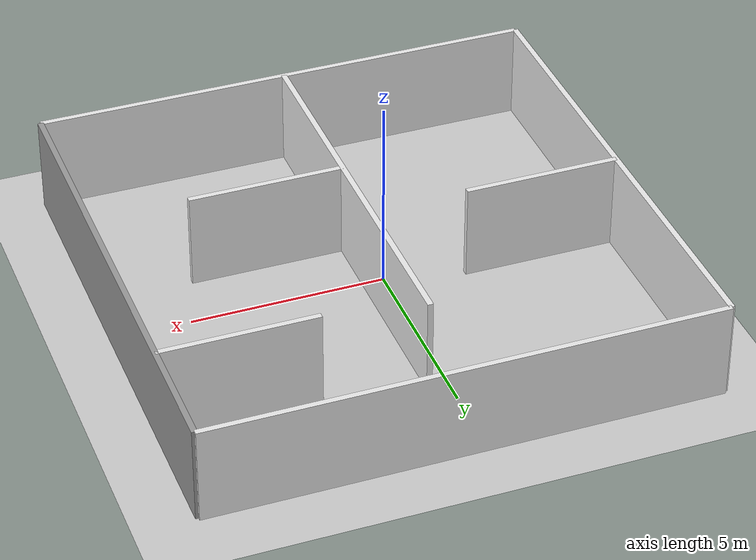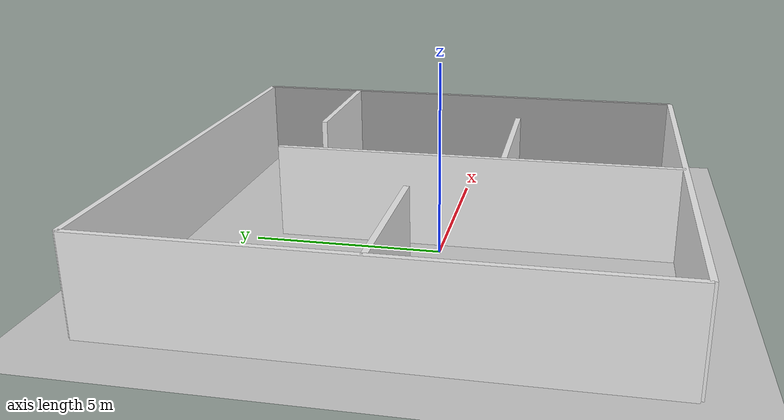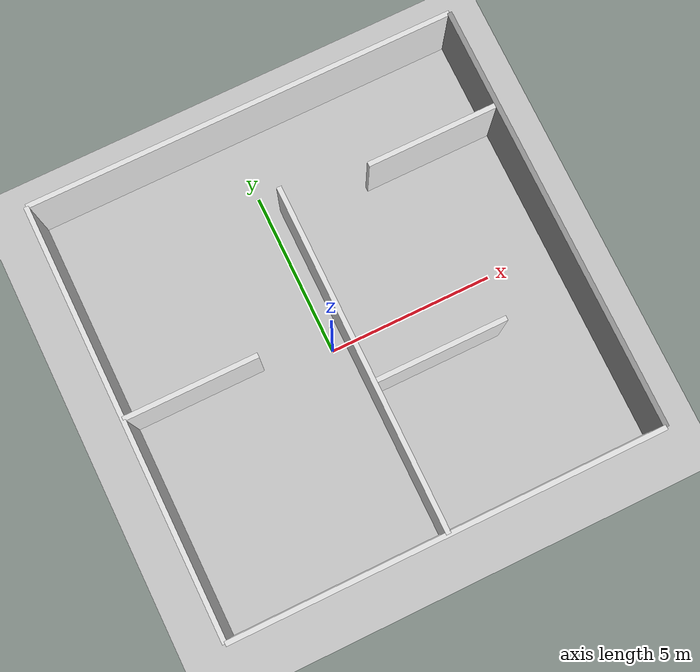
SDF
<?xml version="1.0" ?>

<!-- Instituto Superior Tecnico [2017] -->

<sdf version="1.4">
  <world name="isr-empty-testbed">
    <include>
      <uri>model://ground_plane</uri>
      <material>
          <script>
            <uri>file://media/materials/scripts/gazebo.material</uri>
            <name>Gazebo/Orange</name>
          </script>
      </material>
    </include>

    <!-- Global light source -->
    <include>
        <uri>model://sun</uri>
    </include>

    <!-- walls -->
    <include>
        <uri>file://isr-testbed/walls</uri>
        <pose>0.491830 0.433522 0 0 0 0</pose>
    </include>

    <!-- focus camera to view the whole testbed at startup -->
    <gui fullscreen='0'>
        <camera name='user_camera'>
            <pose frame=''>6.75942 -8.32467 9.76061 0 0.739643 2.1722</pose>
            <view_controller>orbit</view_controller>
            <projection_type>perspective</projection_type>
        </camera>
    </gui>

  </world>
</sdf>

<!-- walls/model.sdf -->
<sdf version='1.6'>
  <model name='walls'>
    <pose frame=''>2.39208 2.30864 0 0 -0 0</pose>
    <link name='Wall_1'>
      <collision name='Wall_1_Collision'>
        <geometry>
          <box>
            <size>13 0.15 2.5</size>
          </box>
        </geometry>
        <pose frame=''>0 0 1.25 0 -0 0</pose>
      </collision>
      <visual name='Wall_1_Visual'>
        <pose frame=''>0 0 1.25 0 -0 0</pose>
        <geometry>
          <box>
            <size>13 0.15 2.5</size>
          </box>
        </geometry>
        <material>
          <script>
            <uri>file://media/materials/scripts/gazebo.material</uri>
            <name>Gazebo/White</name>
          </script>
          <ambient>1 1 1 1</ambient>
        </material>
      </visual>
      <pose frame=''>-6.5 -0 0 0 -0 1.57079632679</pose>
    </link>
    <link name='Wall_2'>
      <collision name='Wall_2_Collision'>
        <geometry>
          <box>
            <size>13 0.15 2.5</size>
          </box>
        </geometry>
        <pose frame=''>0 0 1.25 0 -0 0</pose>
      </collision>
      <visual name='Wall_2_Visual'>
        <pose frame=''>0 0 1.25 0 -0 0</pose>
        <geometry>
          <box>
            <size>13 0.15 2.5</size>
          </box>
        </geometry>
        <material>
          <script>
            <uri>file://media/materials/scripts/gazebo.material</uri>
            <name>Gazebo/White</name>
          </script>
          <ambient>1 1 1 1</ambient>
        </material>
      </visual>
      <pose frame=''>0 6.5 0 0 -0 0</pose>
    </link>
    <link name='Wall_3'>
      <collision name='Wall_3_Collision'>
        <geometry>
          <box>
            <size>13 0.15 2.5</size>
          </box>
        </geometry>
        <pose frame=''>0 0 1.25 0 -0 0</pose>
      </collision>
      <visual name='Wall_3_Visual'>
        <pose frame=''>0 0 1.25 0 -0 0</pose>
        <geometry>
          <box>
            <size>13 0.15 2.5</size>
          </box>
        </geometry>
        <material>
          <script>
            <uri>file://media/materials/scripts/gazebo.material</uri>
            <name>Gazebo/Grey</name>
          </script>
          <ambient>1 1 1 1</ambient>
        </material>
      </visual>
      <pose frame=''>6.5 0 0 0 0 -1.57079632679</pose>
    </link>
    <link name='Wall_4'>
      <collision name='Wall_4_Collision'>
        <geometry>
          <box>
            <size>13 0.15 2.5</size>
          </box>
        </geometry>
        <pose frame=''>0 0 1.25 0 -0 0</pose>
      </collision>
      <visual name='Wall_4_Visual'>
        <pose frame=''>0 0 1.25 0 -0 0</pose>
        <geometry>
          <box>
            <size>13 0.15 2.5</size>
          </box>
        </geometry>
        <material>
          <script>
            <uri>file://media/materials/scripts/gazebo.material</uri>
            <name>Gazebo/White</name>
          </script>
          <ambient>1 1 1 1</ambient>
        </material>
      </visual>
      <pose frame=''>0 -6.5 0 0 0 0</pose>
    </link>
    <link name='Wall_5'>
      <collision name='Wall_5_Collision'>
        <geometry>
          <box>
            <size>10.5 0.15 2.5</size>
          </box>
        </geometry>
        <pose frame=''>0 0 1.25 0 -0 0</pose>
      </collision>
      <visual name='Wall_5_Visual'>
        <pose frame=''>0 0 1.25 0 -0 0</pose>
        <geometry>
          <box>
            <size>10.5 0.15 2.5</size>
          </box>
        </geometry>
        <material>
          <script>
            <uri>file://media/materials/scripts/gazebo.material</uri>
            <name>Gazebo/White</name>
          </script>
          <ambient>1 1 1 1</ambient>
        </material>
      </visual>
      <pose frame=''>0 -1.25 0 0 0 -1.57079632679</pose>
    </link>
    <link name='Wall_6'>
      <collision name='Wall_6_Collision'>
        <geometry>
          <box>
            <size>4 0.15 2.5</size>
          </box>
        </geometry>
        <pose frame=''>0 0 1.25 0 -0 0</pose>
      </collision>
      <visual name='Wall_6_Visual'>
        <pose frame=''>0 0 1.25 0 -0 0</pose>
        <geometry>
          <box>
            <size>4 0.15 2.5</size>
          </box>
        </geometry>
        <material>
          <script>
            <uri>file://media/materials/scripts/gazebo.material</uri>
            <name>Gazebo/White</name>
          </script>
          <ambient>1 1 1 1</ambient>
        </material>
      </visual>
      <pose frame=''>-4.5 0 0 0 -0 0</pose>
    </link>
    <link name='Wall_7'>
      <collision name='Wall_7_Collision'>
        <geometry>
          <box>
            <size>4 0.15 2.5</size>
          </box>
        </geometry>
        <pose frame=''>0 0 1.25 0 -0 0</pose>
      </collision>
      <visual name='Wall_7_Visual'>
        <pose frame=''>0 0 1.25 0 -0 0</pose>
        <geometry>
          <box>
            <size>4 0.15 2.5</size>
          </box>
        </geometry>
        <material>
          <script>
            <uri>file://media/materials/scripts/gazebo.material</uri>
            <name>Gazebo/White</name>
          </script>
          <ambient>1 1 1 1</ambient>
        </material>
      </visual>
      <pose frame=''>4.5 3.5 0 0 -0 0</pose>
    </link>
    <link name='Wall_8'>
      <collision name='Wall_8_Collision'>
        <geometry>
          <box>
            <size>4 0.15 2.5</size>
          </box>
        </geometry>
        <pose frame=''>0 0 1.25 0 -0 0</pose>
      </collision>
      <visual name='Wall_8_Visual'>
        <pose frame=''>0 0 1.25 0 -0 0</pose>
        <geometry>
          <box>
            <size>4 0.15 2.5</size>
          </box>
        </geometry>
        <material>
          <script>
            <uri>file://media/materials/scripts/gazebo.material</uri>
            <name>Gazebo/White</name>
          </script>
          <ambient>1 1 1 1</ambient>
        </material>
      </visual>
      <pose frame=''>2 -2 0 0 -0 0</pose>
    </link>
    <static>1</static>
  </model>
</sdf>
